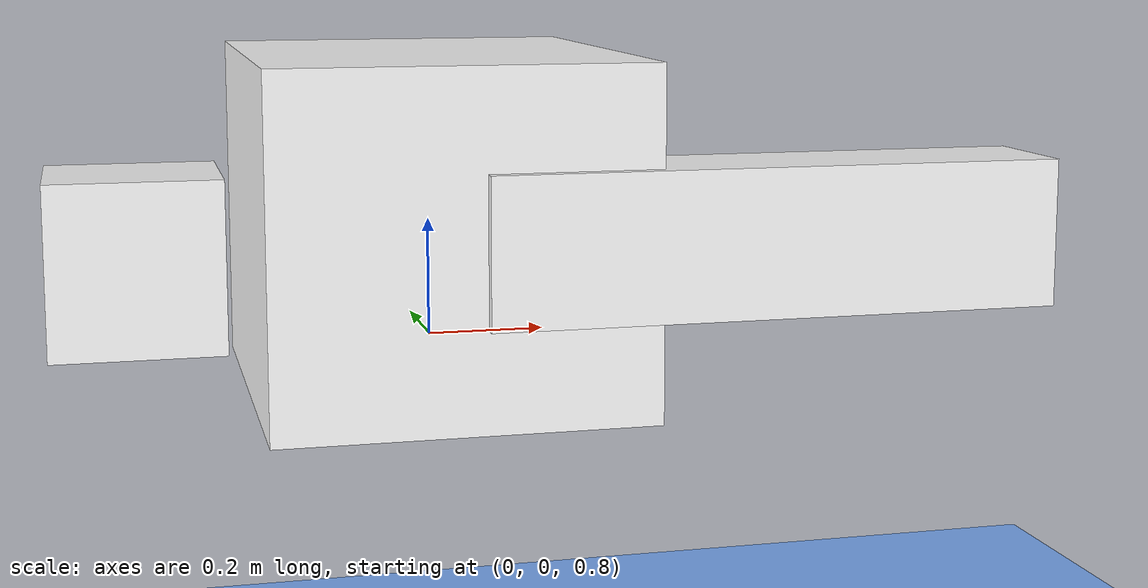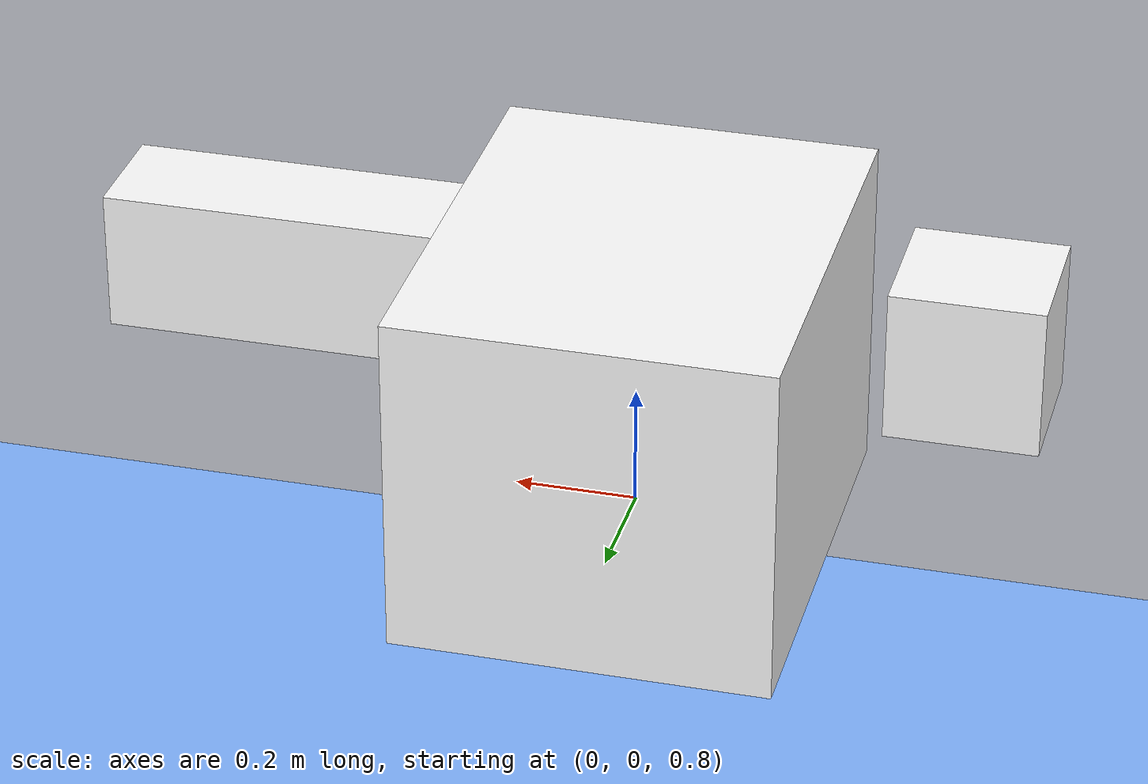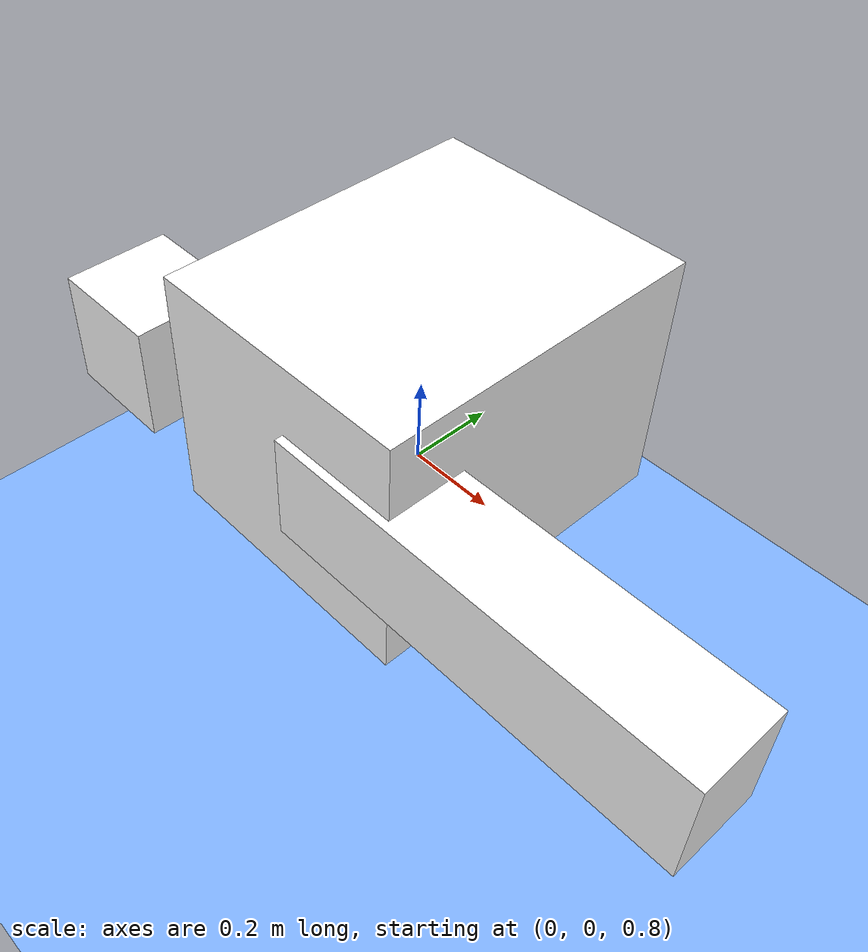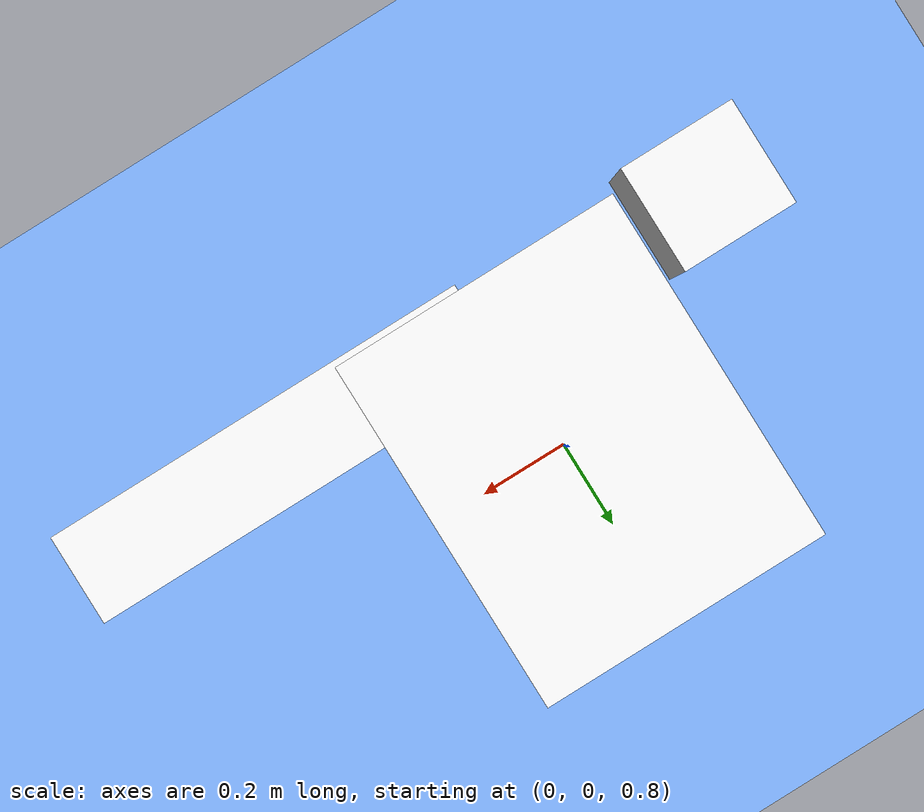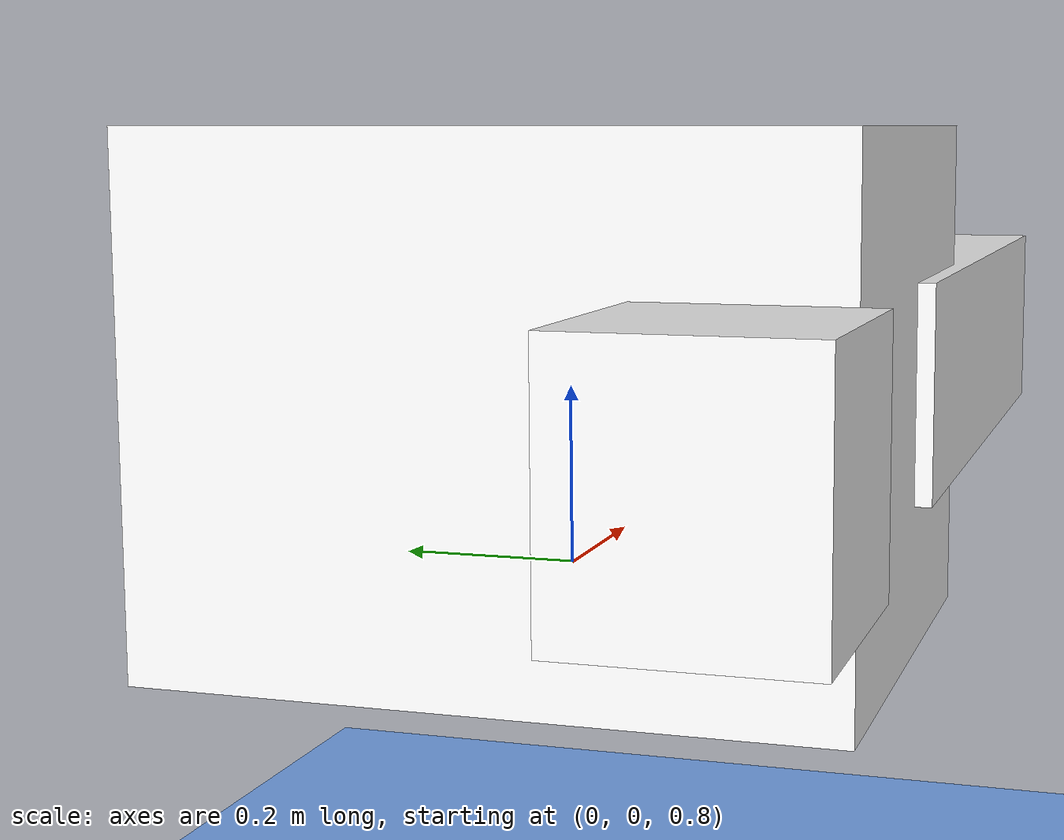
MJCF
<mujoco>
    <worldbody>
        <light diffuse=".5 .5 .5" pos="0 0 2" dir="0 -1 0" />
        <geom type="plane" size="10 10 0.1" rgba="0.5 0.7 1 1" />

        <body name="flappybird" pos="0 0 1" euler="0 0 0">
            <joint type="free" axis="0 0 0" pos="0 0 0" />
            <body name="body" pos="0 0 0" euler="0 0 0">
                <geom type="box" size="0.3106885537907337 0.3805848973395197 0.28786006838169304" rgba="1 1 1 1" mass="0.01205844612158162" />
            </body>

            <body name="wing1" pos=".5 -.3 0" euler="0 -90 0">
                <joint name="joint1" type="hinge" axis="0 1 0" pos="0 0 .25" range="-45 45" />
                <geom type="box" size="0.12150826126280811 0.1 0.4714683692116851" rgba="1 1 1 1" mass="0.501360265620308" />
            </body>

            <body name="wing2" pos="-.5 -.3 0" euler="0 90 0">
                <joint name="joint2" type="hinge" axis="0 1 0" pos="0 0 .25" range="-45 45" />
                <geom type="box" size="0.13086540848613226 0.1202914620712736 0.1293871467075561" rgba="1 1 1 1" mass="0.27190713745434186" />
            </body>

        </body>
    </worldbody>

    <actuator>
        <motor joint="joint1" name="m1" gear="12.539725604582289" ctrllimited="true" ctrlrange="-5 5" />
        <motor joint="joint2" name="m2" gear="16.533542098696124" ctrllimited="true" ctrlrange="-5 5" />

</actuator>

</mujoco>
